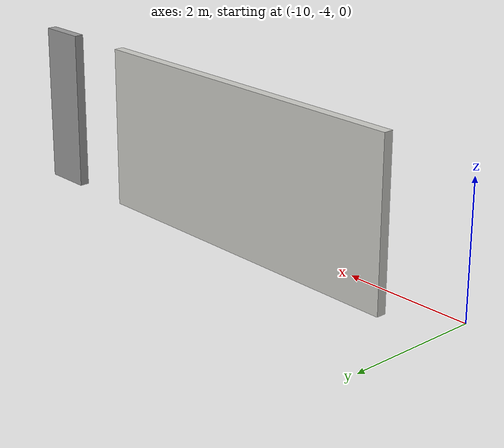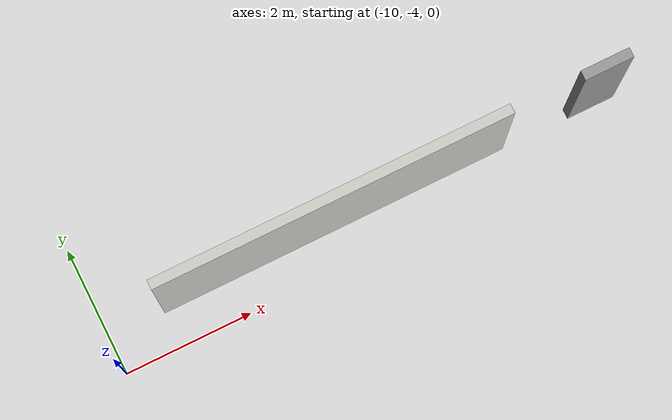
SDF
<?xml version='1.0'?>
<sdf version='1.7'>
  <model name='Hospital.world'>
    <pose>-4.56071 -1.73316 0 0 -0 0</pose>
    <link name='Wall_126'>
      <collision name='Wall_126_Collision'>
        <geometry>
          <box>
            <size>5.5 0.15 2.5</size>
          </box>
        </geometry>
        <pose>0 0 1.25 0 -0 0</pose>
      </collision>
      <visual name='Wall_126_Visual'>
        <pose>0 0 1.25 0 -0 0</pose>
        <geometry>
          <box>
            <size>5.5 0.15 2.5</size>
          </box>
        </geometry>
        <material>
          <script>
            <uri>file://media/materials/scripts/gazebo.material</uri>
            <name>Gazebo/CeilingTiled</name>
          </script>
          <ambient>1 1 1 1</ambient>
        </material>
        <meta>
          <layer>0</layer>
        </meta>
      </visual>
      <pose>-1.81071 -1.63816 0 0 -0 3.14159</pose>
    </link>
    <link name='Wall_134'>
      <collision name='Wall_134_Collision'>
        <geometry>
          <box>
            <size>0.75 0.15 2.5</size>
          </box>
        </geometry>
        <pose>0 0 1.25 0 -0 0</pose>
      </collision>
      <visual name='Wall_134_Visual'>
        <pose>0 0 1.25 0 -0 0</pose>
        <geometry>
          <box>
            <size>0.75 0.15 2.5</size>
          </box>
        </geometry>
        <material>
          <script>
            <uri>file://media/materials/scripts/gazebo.material</uri>
            <name>Gazebo/Grey</name>
          </script>
          <ambient>1 1 1 1</ambient>
        </material>
        <meta>
          <layer>0</layer>
        </meta>
      </visual>
      <pose>2.38429 -1.65816 0 0 -0 3.14159</pose>
    </link>
    <static>1</static>
  </model>
</sdf>
